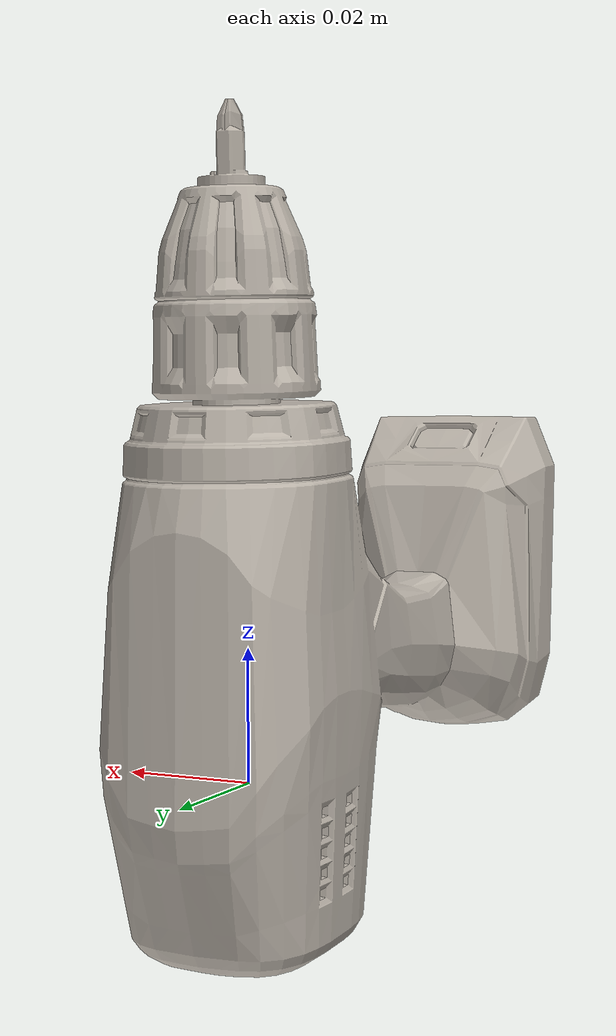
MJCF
<mujoco model="drill">
  <compiler angle="radian" meshdir="assets" texturedir="assets" autolimits="true"/>
  <default>
    <default class="visual">
      <geom group="2" type="mesh" contype="0" conaffinity="0"/>
    </default>
    <default class="collision">
      <geom group="3" type="mesh" density="500" mass="2" solimp="0.95 0.98 0.001" solref="0.004 1"/>
    </default>
  </default>
  <asset>
    <texture type="2d" name="Albedo" file="Albedo.png"/>
    <material name="Material" texture="Albedo" specular="0.5" shininess="0.5"/>
    <mesh file="Drill.obj" scale="0.003 0.003 0.003"/>
    <mesh file="Drill_collision_0.obj" scale="0.003 0.003 0.003"/>
    <mesh file="Drill_collision_1.obj" scale="0.003 0.003 0.003"/>
    <mesh file="Drill_collision_2.obj" scale="0.003 0.003 0.003"/>
    <mesh file="Drill_collision_3.obj" scale="0.003 0.003 0.003"/>
    <mesh file="Drill_collision_4.obj" scale="0.003 0.003 0.003"/>
    <mesh file="Drill_collision_5.obj" scale="0.003 0.003 0.003"/>
  </asset>
  <worldbody>
    <body name="Drill">
      <geom material="Material" mesh="Drill" class="visual"/>
      <geom mesh="Drill_collision_0" rgba="0.46984089952748265 0.8213890710319409 0.5833526716937155 1" class="collision"/>
      <geom mesh="Drill_collision_1" rgba="0.16048689371393987 0.8900088583594358 0.03882547415012061 1" class="collision"/>
      <geom mesh="Drill_collision_2" rgba="0.41744496151095534 0.40133641133453746 0.45712940165014404 1" class="collision"/>
      <geom mesh="Drill_collision_3" rgba="0.4696152194178135 0.18331778296857315 0.6267542206517079 1" class="collision"/>
      <geom mesh="Drill_collision_4" rgba="0.6172853952200725 0.6176141032437912 0.23814753183650872 1" class="collision"/>
      <geom mesh="Drill_collision_5" rgba="0.20257687743231068 0.5873389947447153 0.7881307865448969 1" class="collision"/>
    </body>
  </worldbody>
</mujoco>
